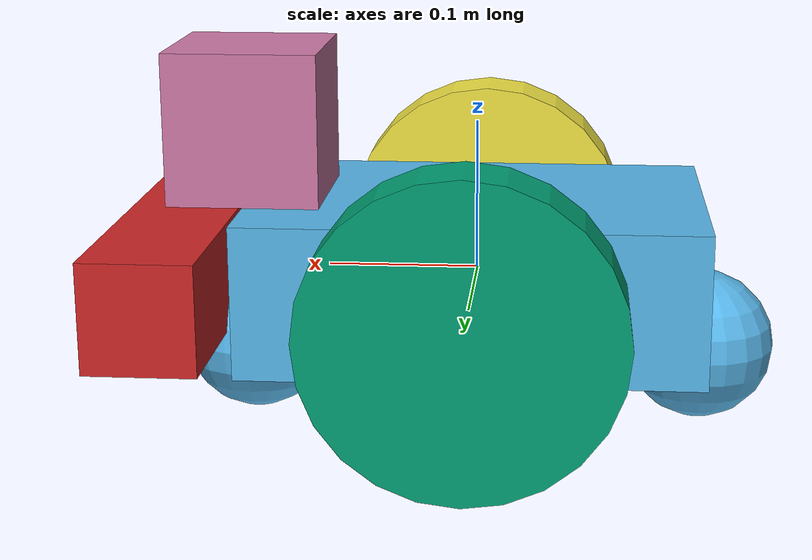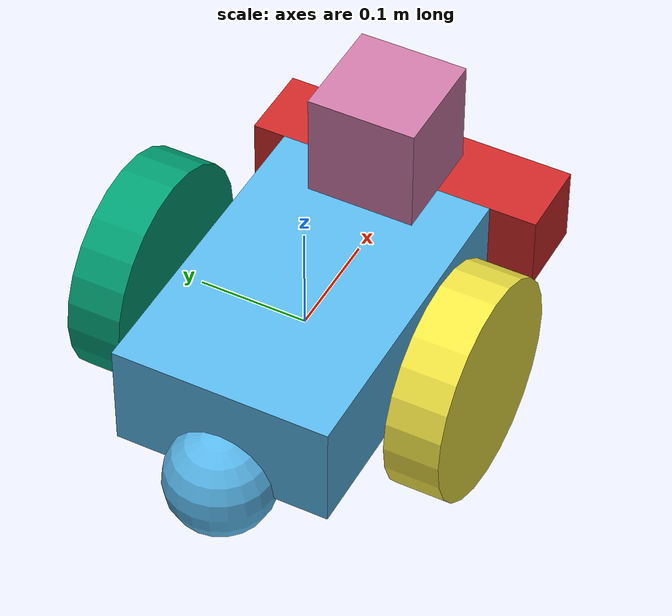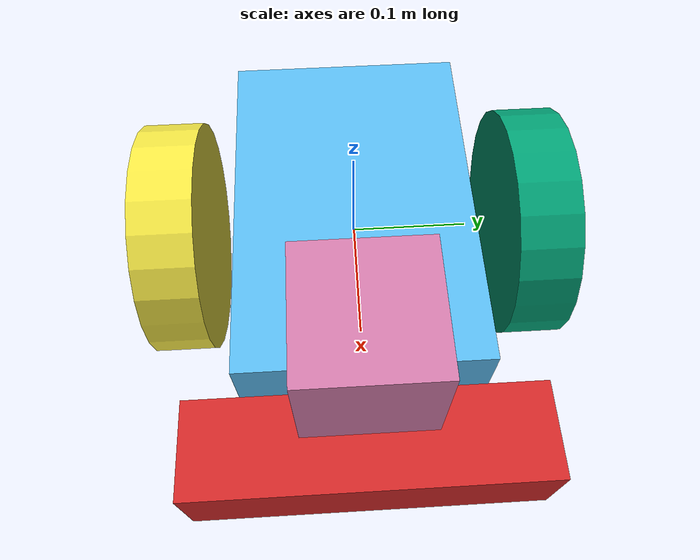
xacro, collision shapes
<?xml version='1.0'?>

<robot name="slam_bot" xmlns:xacro="http://www.ros.org/wiki/xacro">

  <xacro:include filename="$(find slam_project)/urdf/slam_bot.gazebo" />

  <link name="robot_footprint"></link>

  <joint name="robot_footprint_joint" type="fixed">
    <origin xyz="0 0 0" rpy="0 0 0" />
    <parent link="robot_footprint"/>
    <child link="chassis" />
  </joint>

  <link name='chassis'>
    <pose>0 0 0.1 0 0 0</pose>

    <inertial>
      <mass value="15.0"/>
      <origin xyz="0.0 0 0" rpy=" 0 0 0"/>
      <inertia
          ixx="0.1" ixy="0" ixz="0"
          iyy="0.1" iyz="0"
          izz="0.1"
      />
    </inertial>

    <collision name='collision'>
      <origin xyz="0 0 0" rpy=" 0 0 0"/>
      <geometry>
        <box size=".3 .2 .1"/>
      </geometry>
    </collision>

    <visual name='chassis_visual'>
      <origin xyz="0 0 0" rpy=" 0 0 0"/>
      <geometry>
        <box size=".3 .2 .1"/>
      </geometry>
    </visual>

    <collision name='back_caster_collision'>
      <origin xyz="-0.15 0 -0.05" rpy=" 0 0 0"/>
      <geometry>
        <sphere radius="0.05"/>
      </geometry>
      <surface>
        <friction>
          <ode>
            <mu>0</mu>
            <mu2>0</mu2>
            <slip1>1.0</slip1>
            <slip2>1.0</slip2>
          </ode>
        </friction>
      </surface>
    </collision>

    <visual name='back_caster_visual'>
      <origin xyz="-0.15 0 -0.05" rpy=" 0 0 0"/>
      <geometry>
        <sphere radius="0.05"/>
      </geometry>
    </visual>

    <collision name='front_caster_collision'>
      <origin xyz="0.15 0 -0.05" rpy=" 0 0 0"/>
      <geometry>
        <sphere radius="0.05"/>
      </geometry>
      <surface>
        <friction>
          <ode>
            <mu>0</mu>
            <mu2>0</mu2>
            <slip1>1.0</slip1>
            <slip2>1.0</slip2>
          </ode>
        </friction>
      </surface>
    </collision>

    <visual name='front_caster_visual'>
      <origin xyz="0.15 0 -0.05" rpy=" 0 0 0"/>
      <geometry>
        <sphere radius="0.05"/>
      </geometry>
    </visual>

  </link>

  <!-- left Wheel link -->

  <link name="left_wheel">
    <inertial>
      <mass value="5.0"/>
      <origin xyz="0 0 0" rpy=" 0 1.5707 1.5707"/>
      <inertia
          ixx="0.1" ixy="0" ixz="0"
          iyy="0.1" iyz="0"
          izz="0.1"
      />
    </inertial>

    <collision name="collision">
      <origin xyz="0 0 0" rpy=" 0 1.5707 1.5707"/>
      <geometry>
        <cylinder radius="0.1" length="0.05" />
      </geometry>
    </collision>

    <visual name="visual">
      <origin xyz="0 0 0" rpy="0 1.5707 1.5707"/>
      <geometry>
        <cylinder radius="0.1" length="0.05" />

      </geometry>
    </visual>
  </link>

  <!-- left wheel joint -->

  <joint type="continuous" name="left_wheel_hinge">
    <origin xyz="0 0.15 0" rpy="0 0 0"/>
    <child link="left_wheel"/>
    <parent link="chassis"/>
    <axis xyz="0 1 0" rpy="0 0 0"/>
    <limit effort="10000" velocity="1000"/>
    <joint_properties damping="1.0" friction="1.0"/>
  </joint>
  <!-- right Wheel link -->

  <link name="right_wheel">
    <inertial>
      <mass value="5.0"/>
      <origin xyz="0 0 0" rpy="0 1.5707 1.5707"/>
      <inertia
          ixx="0.1" ixy="0" ixz="0"
          iyy="0.1" iyz="0"
          izz="0.1"
      />
    </inertial>

    <collision name="collision">
      <origin xyz="0 0 0" rpy="0 1.5707 1.5707"/>
      <geometry>
        <cylinder radius="0.1" length="0.05" />
      </geometry>
    </collision>

    <visual name="visual">
      <origin xyz="0 0 0" rpy="0 1.5707 1.5707"/>
      <geometry>
        <cylinder radius="0.1" length="0.05" />
      </geometry>
    </visual>
  </link>

  <!-- right wheel joint -->

  <joint type="continuous" name="right_wheel_hinge">
    <origin xyz="0 -0.15 0" rpy="0 0 0"/>
    <child link="right_wheel"/>
    <parent link="chassis"/>
    <axis xyz="0 1 0" rpy="0 0 0"/>
    <limit effort="10000" velocity="1000"/>
    <joint_properties damping="1.0" friction="1.0"/>
  </joint>

<!-- Camera link -->

  <link name='camera'>
        <inertial>
            <mass value="0.1"/>
            <origin xyz="0.0 0 0" rpy=" 0 0 0"/>
            <inertia ixx="1e-6" ixy="0" ixz="0" iyy="1e-6" iyz="0" izz="1e-6"/>
        </inertial>

        <collision name='collision'>
            <origin xyz="0.0 0 0" rpy=" 0 0 0"/>
            <geometry>
                <box size="0.073000 0.276000 0.07200"/>
            </geometry>
        </collision>

        <visual name='camera_visual'>
            <origin xyz="0.0 0 0" rpy=" 0 0 0"/>
            <geometry>
                <mesh filename="package://slam_project/meshes/kinect.dae"/>
            </geometry>
        </visual>
    </link>

<!-- Camera Joint -->

  <joint type="fixed" name="camera_joint">
    <origin xyz="0.2 0 0" rpy="0 0 0"/>
    <child link="camera"/>
    <parent link="chassis"/>
  </joint>

<!-- RGBD Link Joint -->

<link name="camera_rgbd_frame"/>

  <joint type="fixed" name="rgbd_camera_joint">
    <origin xyz="0.2 0 0" rpy="-1.5707 0 -1.5707"/>
    <child link="camera_rgbd_frame"/>
    <parent link="camera"/>
  </joint>

 <!-- Laser Range Finder -->

  <link name="hokuyo">
    <inertial>
      <mass value="0.1"/>
      <origin xyz="0 0 0" rpy="0 0 0"/>
      <inertia
          ixx="1e-6" ixy="0" ixz="0"
          iyy="1e-6" iyz="0"
          izz="1e-6"
      />
    </inertial>

    <collision name="collision">
      <origin xyz="0 0 0" rpy="0 0 0"/>
      <geometry>
        <box size="0.1 0.1 0.1" />
      </geometry>
    </collision>

    <visual name="visual">
      <origin xyz="0 0 0" rpy="0 0 0"/>
      <geometry>
        <mesh filename="package://slam_project/meshes/hokuyo.dae"/>
                <!-- mesh filename="$(find slam_bot)/meshes/hokuyo.dae"/ -->
      </geometry>
    </visual>
  </link>

<!-- Laser Range Finder Joint -->

  <joint type="fixed" name="hokuyo_joint">
    <origin xyz="0.15 0 0.1" rpy="0 0 0"/>
    <child link="hokuyo"/>
    <parent link="chassis"/>
  </joint>

</robot>
